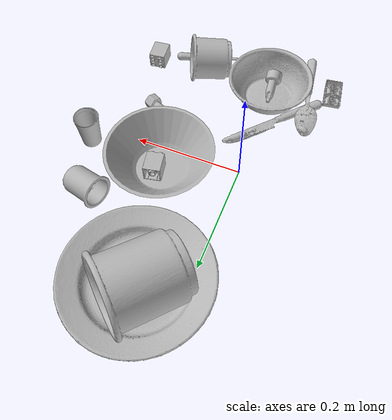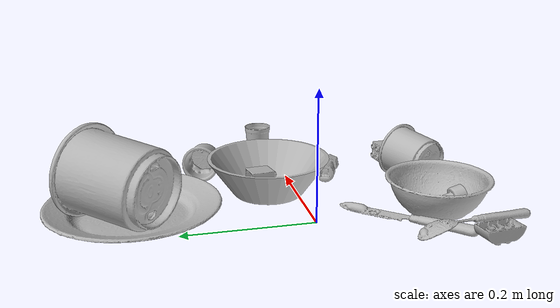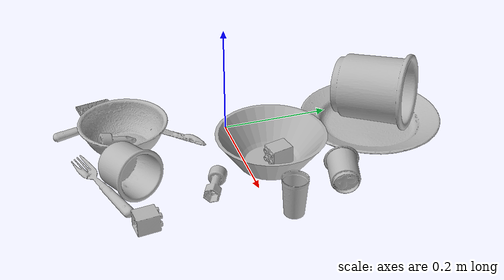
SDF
<sdf version="1.4">
  <world name="default">
    <light name="light1" type="point">
      <pose>0 0 1 0 0 0</pose>
      <diffuse>3 3 3 1</diffuse>
      <specular>3 3 3 1</specular>
    </light>
    <light name="light2" type="point">
      <pose>0 0.5 2 0 0 0</pose>
      <diffuse>1 1 1 1</diffuse>
      <specular>1 1 1 1</specular>
    </light>
    <light name="light3" type="point">
      <pose>0 0.5 2 0 0 0</pose>
      <diffuse>3 3 3 1</diffuse>
      <specular>3 3 3 1</specular>
    </light>
    <scene>
      <ambient>0.7 0.7 0.7</ambient>
    </scene>
    <model name="plate1">
      <link name="link_plate1">
        <collision name="default">
          <geometry>
            <mesh>
              <uri>model://plate/collision_meshes/collision.obj</uri>
              <scale>1.0 1.0 1.0</scale>
            </mesh>
          </geometry>
          <surface>
            <friction>
              <ode>
                <mu>0.5</mu>
                <mu2>0.5</mu2>
              </ode>
            </friction>
          <contact>
        <ode>
            <max_vel>0</max_vel>
            <min_depth>0.0001</min_depth>
            <kp>1e8</kp>
        </ode>
    </contact></surface>
        </collision>
        <visual name="default">
          <geometry>
            <mesh>
              <uri>model://plate/visual_meshes/visual.dae</uri>
              <scale>1.0 1.0 1.0</scale>
            </mesh>
          </geometry>
        </visual>
        <inertial>
          <mass>0.188415065407753</mass>
          <pose>-0.0006044681649655104 0.0002782578521873802 -0.0010561991948634386 0.0022187970116661695 -0.0032254679619122127 0.4526056514331616</pose>
          <inertia>
            <ixx>0.00088140933</ixx>
            <iyy>0.000872979</iyy>
            <izz>0.0017239053</izz>
            <ixy>0</ixy>
            <ixz>0</ixz>
            <iyz>0</iyz>
          </inertia>
        </inertial>
      </link>
      <pose>0.07951376587152481 0.25937211513519287 0.013733206316828728 1.7027689788179231e-06 -3.673825666808807e-06 -0.1690315571752682</pose>
    </model>
    <model name="cup1">
      <link name="link_cup1">
        <collision name="default">
          <geometry>
            <mesh>
              <uri>model://d_cups/collision_meshes/collision.obj</uri>
              <scale>2.0 2.0 2.0</scale>
            </mesh>
          </geometry>
          <surface>
            <friction>
              <ode>
                <mu>0.5</mu>
                <mu2>0.5</mu2>
              </ode>
            </friction>
          <contact>
        <ode>
            <max_vel>0</max_vel>
            <min_depth>0.0001</min_depth>
            <kp>1e8</kp>
        </ode>
    </contact></surface>
        </collision>
        <visual name="default">
          <geometry>
            <mesh>
              <uri>model://d_cups/visual_meshes/visual.dae</uri>
              <scale>2.0 2.0 2.0</scale>
            </mesh>
          </geometry>
        </visual>
        <inertial>
          <mass>0.39843064546585083</mass>
          <pose>0.0016136104241013527 0.0038234808016568422 -0.004533304367214441 0.24012134810188138 -0.24709791903716813 0.5942561701250738</pose>
          <inertia>
            <ixx>0.0013343208</ixx>
            <iyy>0.001330459</iyy>
            <izz>0.001207787</izz>
            <ixy>0</ixy>
            <ixz>0</ixz>
            <iyz>0</iyz>
          </inertia>
        </inertial>
      </link>
      <pose>0.059160538017749786 0.2734223008155823 0.06787903606891632 -1.3879750131818058 1.0571069419026076 -0.5593204360266343</pose>
    </model>
    <model name="silverware1">
      <link name="link_silverware1">
        <collision name="default">
          <geometry>
            <mesh>
              <uri>model://knife/collision_meshes/collision.obj</uri>
              <scale>1.0 1.0 1.0</scale>
            </mesh>
          </geometry>
          <surface>
            <friction>
              <ode>
                <mu>0.5</mu>
                <mu2>0.5</mu2>
              </ode>
            </friction>
          <contact>
        <ode>
            <max_vel>0</max_vel>
            <min_depth>0.0001</min_depth>
            <kp>1e8</kp>
        </ode>
    </contact></surface>
        </collision>
        <visual name="default">
          <geometry>
            <mesh>
              <uri>model://knife/visual_meshes/visual.dae</uri>
              <scale>1.0 1.0 1.0</scale>
            </mesh>
          </geometry>
        </visual>
        <inertial>
          <mass>0.027211036533117294</mass>
          <pose>-0.02378525771200657 0.0015275125624611974 5.062023410573602e-05 0.0730549860308878 0.01724841828598218 -0.007409817457274567</pose>
          <inertia>
            <ixx>7.723595e-07</ixx>
            <iyy>0.000104540384</iyy>
            <izz>0.00010478913</izz>
            <ixy>0</ixy>
            <ixz>0</ixz>
            <iyz>0</iyz>
          </inertia>
        </inertial>
      </link>
      <pose>-0.02458062209188938 -0.12779895961284637 0.0060372622683644295 2.976429270834836 0.025039931328255806 0.8143591625958089</pose>
    </model>
    <model name="silverware2">
      <link name="link_silverware2">
        <collision name="default">
          <geometry>
            <mesh>
              <uri>model://fork/collision_meshes/collision.obj</uri>
              <scale>1.0 1.0 1.0</scale>
            </mesh>
          </geometry>
          <surface>
            <friction>
              <ode>
                <mu>0.5</mu>
                <mu2>0.5</mu2>
              </ode>
            </friction>
          <contact>
        <ode>
            <max_vel>0</max_vel>
            <min_depth>0.0001</min_depth>
            <kp>1e8</kp>
        </ode>
    </contact></surface>
        </collision>
        <visual name="default">
          <geometry>
            <mesh>
              <uri>model://fork/visual_meshes/visual.dae</uri>
              <scale>1.0 1.0 1.0</scale>
            </mesh>
          </geometry>
        </visual>
        <inertial>
          <mass>0.01567319966852665</mass>
          <pose>-0.029570044949650764 0.00046588233090005815 0.0003218860656488687 -0.013551693849150472 -0.010977837004960822 0.014453899894816049</pose>
          <inertia>
            <ixx>5.494343e-07</ixx>
            <iyy>4.0918225e-05</iyy>
            <izz>4.1163967e-05</izz>
            <ixy>0</ixy>
            <ixz>0</ixz>
            <iyz>0</iyz>
          </inertia>
        </inertial>
      </link>
      <pose>0.12145423889160156 -0.2513276934623718 0.0057203383184969425 -0.18319430764458897 0.024723684562928554 -2.8260491131036214</pose>
    </model>
    <model name="silverware3">
      <link name="link_silverware3">
        <collision name="default">
          <geometry>
            <mesh>
              <uri>model://spoon/collision_meshes/collision.obj</uri>
              <scale>1.0 1.0 1.0</scale>
            </mesh>
          </geometry>
          <surface>
            <friction>
              <ode>
                <mu>0.5</mu>
                <mu2>0.5</mu2>
              </ode>
            </friction>
          <contact>
        <ode>
            <max_vel>0</max_vel>
            <min_depth>0.0001</min_depth>
            <kp>1e8</kp>
        </ode>
    </contact></surface>
        </collision>
        <visual name="default">
          <geometry>
            <mesh>
              <uri>model://spoon/visual_meshes/visual.dae</uri>
              <scale>1.0 1.0 1.0</scale>
            </mesh>
          </geometry>
        </visual>
        <inertial>
          <mass>0.020675545558333397</mass>
          <pose>-0.0055263228714466095 -0.001603417913429439 -0.0007271659560501575 0.03521671071703309 -0.03906584129558259 0.006150610048623938</pose>
          <inertia>
            <ixx>1.1500075e-06</ixx>
            <iyy>7.866978e-05</iyy>
            <izz>7.923691e-05</izz>
            <ixy>0</ixy>
            <ixz>0</ixz>
            <iyz>0</iyz>
          </inertia>
        </inertial>
      </link>
      <pose>-0.06625630706548691 -0.21632829308509827 0.010571634396910667 -2.9900680243066216 -0.06512050998321571 1.7536015439696153</pose>
    </model>
    <model name="cup3">
      <link name="link_cup3">
        <collision name="default">
          <geometry>
            <mesh>
              <uri>model://h_cups/collision_meshes/collision.obj</uri>
              <scale>1.0 1.0 1.0</scale>
            </mesh>
          </geometry>
          <surface>
            <friction>
              <ode>
                <mu>0.5</mu>
                <mu2>0.5</mu2>
              </ode>
            </friction>
          <contact>
        <ode>
            <max_vel>0</max_vel>
            <min_depth>0.0001</min_depth>
            <kp>1e8</kp>
        </ode>
    </contact></surface>
        </collision>
        <visual name="default">
          <geometry>
            <mesh>
              <uri>model://h_cups/visual_meshes/visual.dae</uri>
              <scale>1.0 1.0 1.0</scale>
            </mesh>
          </geometry>
        </visual>
        <inertial>
          <mass>0.08491484075784683</mass>
          <pose>-2.702520214370452e-05 0.00023018663341645151 -0.0018405397422611713 -0.02436220805872295 0.06545280106490914 0.1288526015338695</pose>
          <inertia>
            <ixx>0.000109663546</ixx>
            <iyy>0.00010835491</iyy>
            <izz>0.00011500697</izz>
            <ixy>0</ixy>
            <ixz>0</ixz>
            <iyz>0</iyz>
          </inertia>
        </inertial>
      </link>
      <pose>0.13622769713401794 -0.20774328708648682 0.04196357727050781 1.4484468960843677 -0.5170621501034167 2.054916908630513</pose>
    </model>
    <model name="cup4">
      <link name="link_cup4">
        <collision name="default">
          <geometry>
            <mesh>
              <uri>model://cup_small/collision_meshes/collision.obj</uri>
              <scale>1.0 1.0 1.0</scale>
            </mesh>
          </geometry>
          <surface>
            <friction>
              <ode>
                <mu>0.5</mu>
                <mu2>0.5</mu2>
              </ode>
            </friction>
          <contact>
        <ode>
            <max_vel>0</max_vel>
            <min_depth>0.0001</min_depth>
            <kp>1e8</kp>
        </ode>
    </contact></surface>
        </collision>
        <visual name="default">
          <geometry>
            <mesh>
              <uri>model://cup_small/visual_meshes/visual.dae</uri>
              <scale>1.0 1.0 1.0</scale>
            </mesh>
          </geometry>
        </visual>
        <inertial>
          <mass>0.024220753461122513</mass>
          <pose>0.00010482438665349036 -0.00033778438228182495 -0.010742821730673313 -0.011493274197159384 -0.01528013747447056 -0.5058088438882253</pose>
          <inertia>
            <ixx>1.4260815e-05</ixx>
            <iyy>1.433438e-05</iyy>
            <izz>6.4388e-06</izz>
            <ixy>0</ixy>
            <ixz>0</ixz>
            <iyz>0</iyz>
          </inertia>
        </inertial>
      </link>
      <pose>0.28237640857696533 0.033104728907346725 0.03472999110817909 8.685261187182543e-06 -3.388673703045373e-05 0.7259941465752453</pose>
    </model>
    <model name="cup5">
      <link name="link_cup5">
        <collision name="default">
          <geometry>
            <mesh>
              <uri>model://b_cups/collision_meshes/collision.obj</uri>
              <scale>1.0 1.0 1.0</scale>
            </mesh>
          </geometry>
          <surface>
            <friction>
              <ode>
                <mu>0.5</mu>
                <mu2>0.5</mu2>
              </ode>
            </friction>
          <contact>
        <ode>
            <max_vel>0</max_vel>
            <min_depth>0.0001</min_depth>
            <kp>1e8</kp>
        </ode>
    </contact></surface>
        </collision>
        <visual name="default">
          <geometry>
            <mesh>
              <uri>model://b_cups/visual_meshes/visual.dae</uri>
              <scale>1.0 1.0 1.0</scale>
            </mesh>
          </geometry>
        </visual>
        <inertial>
          <mass>0.049698356539011</mass>
          <pose>0.0005182003951631486 0.0018058595014736056 -0.0013381819007918239 0.1135633586286738 0.03872473724046268 -0.3456911343663658</pose>
          <inertia>
            <ixx>3.2531058e-05</ixx>
            <iyy>3.1913434e-05</iyy>
            <izz>2.7374275e-05</izz>
            <ixy>0</ixy>
            <ixz>0</ixz>
            <iyz>0</iyz>
          </inertia>
        </inertial>
      </link>
      <pose>0.23605987429618835 0.13883857429027557 0.02776259556412697 -1.4737308985183966 0.1388195253603093 1.3229562718009398</pose>
    </model>
    <model name="bowl1">
      <link name="link_bowl1">
        <collision name="default">
          <geometry>
            <mesh>
              <uri>model://bowl/collision_meshes/collision.obj</uri>
              <scale>1.0 1.0 1.0</scale>
            </mesh>
          </geometry>
          <surface>
            <friction>
              <ode>
                <mu>0.5</mu>
                <mu2>0.5</mu2>
              </ode>
            </friction>
          <contact>
        <ode>
            <max_vel>0</max_vel>
            <min_depth>0.0001</min_depth>
            <kp>1e8</kp>
        </ode>
    </contact></surface>
        </collision>
        <visual name="default">
          <geometry>
            <mesh>
              <uri>model://bowl/visual_meshes/visual.dae</uri>
              <scale>1.0 1.0 1.0</scale>
            </mesh>
          </geometry>
        </visual>
        <inertial>
          <mass>0.10713337361812592</mass>
          <pose>0.00020444899564608932 -0.001030207029543817 -0.0008042642148211598 -0.015763984617069283 0.014546905390658569 0.7140476331316008</pose>
          <inertia>
            <ixx>0.0002460938</ixx>
            <iyy>0.00024059511</iyy>
            <izz>0.00041401442</izz>
            <ixy>0</ixy>
            <ixz>0</ixz>
            <iyz>0</iyz>
          </inertia>
        </inertial>
      </link>
      <pose>0.006045015994459391 -0.1922304928302765 0.027780011296272278 -5.1794579034818517e-08 4.0244363498013395e-07 -0.8195877031902393</pose>
    </model>
    <model name="bowl2">
      <link name="link_bowl2">
        <collision name="default">
          <geometry>
            <mesh>
              <uri>model://bowl_a/collision_meshes/collision.obj</uri>
              <scale>1.0 1.0 1.0</scale>
            </mesh>
          </geometry>
          <surface>
            <friction>
              <ode>
                <mu>0.5</mu>
                <mu2>0.5</mu2>
              </ode>
            </friction>
          <contact>
        <ode>
            <max_vel>0</max_vel>
            <min_depth>0.0001</min_depth>
            <kp>1e8</kp>
        </ode>
    </contact></surface>
        </collision>
        <visual name="default">
          <geometry>
            <mesh>
              <uri>model://bowl_a/visual_meshes/visual.dae</uri>
              <scale>1.0 1.0 1.0</scale>
            </mesh>
          </geometry>
        </visual>
        <inertial>
          <mass>0.5226007103919983</mass>
          <pose>0.00027867400785908103 4.731409717351198e-05 -0.0013765293406322598 -0.0009805372975616423 -0.0010938241101444716 -0.19123543414166835</pose>
          <inertia>
            <ixx>0.0014878683</ixx>
            <iyy>0.0014970028</iyy>
            <izz>0.0026462309</izz>
            <ixy>0</ixy>
            <ixz>0</ixz>
            <iyz>0</iyz>
          </inertia>
        </inertial>
      </link>
      <pose>0.13473868370056152 0.04392175003886223 0.030383039265871048 -4.888632121355097e-07 1.6086474413439189e-06 1.6809882549292152</pose>
    </model>
    <model name="toy1">
      <link name="link_toy1">
        <collision name="default">
          <geometry>
            <mesh>
              <uri>model://f_lego_duplo/collision_meshes/collision.obj</uri>
              <scale>1.0 1.0 1.0</scale>
            </mesh>
          </geometry>
          <surface>
            <friction>
              <ode>
                <mu>0.5</mu>
                <mu2>0.5</mu2>
              </ode>
            </friction>
          <contact>
        <ode>
            <max_vel>0</max_vel>
            <min_depth>0.0001</min_depth>
            <kp>1e8</kp>
        </ode>
    </contact></surface>
        </collision>
        <visual name="default">
          <geometry>
            <mesh>
              <uri>model://f_lego_duplo/visual_meshes/visual.dae</uri>
              <scale>1.0 1.0 1.0</scale>
            </mesh>
          </geometry>
        </visual>
        <inertial>
          <mass>0.04674473777413368</mass>
          <pose>2.3694283299846575e-05 0.00013393160770647228 0.0018837876850739121 0.029838743240884653 -0.014424615896258132 -0.6756775311218791</pose>
          <inertia>
            <ixx>9.877422e-06</ixx>
            <iyy>9.965418e-06</iyy>
            <izz>8.57402e-06</izz>
            <ixy>0</ixy>
            <ixz>0</ixz>
            <iyz>0</iyz>
          </inertia>
        </inertial>
      </link>
      <pose>0.14224523305892944 0.05429458245635033 0.02129068598151207 3.127596174649742 1.5349818482423168 1.7567177711370026</pose>
    </model>
    <model name="toy2">
      <link name="link_toy2">
        <collision name="default">
          <geometry>
            <mesh>
              <uri>model://b_lego_duplo/collision_meshes/collision.obj</uri>
              <scale>1.0 1.0 1.0</scale>
            </mesh>
          </geometry>
          <surface>
            <friction>
              <ode>
                <mu>0.5</mu>
                <mu2>0.5</mu2>
              </ode>
            </friction>
          <contact>
        <ode>
            <max_vel>0</max_vel>
            <min_depth>0.0001</min_depth>
            <kp>1e8</kp>
        </ode>
    </contact></surface>
        </collision>
        <visual name="default">
          <geometry>
            <mesh>
              <uri>model://b_lego_duplo/visual_meshes/visual.dae</uri>
              <scale>1.0 1.0 1.0</scale>
            </mesh>
          </geometry>
        </visual>
        <inertial>
          <mass>0.046308279037475586</mass>
          <pose>-0.00011053026537410915 -9.152292477665469e-06 0.001929429010488093 -0.03749474318211287 -0.02635425030857695 0.451892682452606</pose>
          <inertia>
            <ixx>9.477338e-06</ixx>
            <iyy>9.541048e-06</iyy>
            <izz>8.443999e-06</izz>
            <ixy>0</ixy>
            <ixz>0</ixz>
            <iyz>0</iyz>
          </inertia>
        </inertial>
      </link>
      <pose>0.24617210030555725 -0.200624480843544 0.016180753707885742 0.042357133887821086 -1.562385655378821 -1.506849722977604</pose>
    </model>
    <model name="toy3">
      <link name="link_toy3">
        <collision name="default">
          <geometry>
            <mesh>
              <uri>model://c_toy_airplane/collision_meshes/collision.obj</uri>
              <scale>1.0 1.0 1.0</scale>
            </mesh>
          </geometry>
          <surface>
            <friction>
              <ode>
                <mu>0.5</mu>
                <mu2>0.5</mu2>
              </ode>
            </friction>
          <contact>
        <ode>
            <max_vel>0</max_vel>
            <min_depth>0.0001</min_depth>
            <kp>1e8</kp>
        </ode>
    </contact></surface>
        </collision>
        <visual name="default">
          <geometry>
            <mesh>
              <uri>model://c_toy_airplane/visual_meshes/visual.dae</uri>
              <scale>1.0 1.0 1.0</scale>
            </mesh>
          </geometry>
        </visual>
        <inertial>
          <mass>0.03609102964401245</mass>
          <pose>-0.00023024271649774164 -4.429565194641327e-07 -0.006080531980842352 -0.006192551548155338 -0.01679780015794874 0.7654806130326979</pose>
          <inertia>
            <ixx>1.6572261e-05</ixx>
            <iyy>1.6525488e-05</iyy>
            <izz>3.890839e-06</izz>
            <ixy>0</ixy>
            <ixz>0</ixz>
            <iyz>0</iyz>
          </inertia>
        </inertial>
      </link>
      <pose>0.186147078871727 -0.07308164238929749 0.014633269980549812 -1.6025289228070017 0.6180107818619544 -2.0516744659799744</pose>
    </model>
    <model name="toy4">
      <link name="link_toy4">
        <collision name="default">
          <geometry>
            <mesh>
              <uri>model://d_toy_airplane/collision_meshes/collision.obj</uri>
              <scale>1.0 1.0 1.0</scale>
            </mesh>
          </geometry>
          <surface>
            <friction>
              <ode>
                <mu>0.5</mu>
                <mu2>0.5</mu2>
              </ode>
            </friction>
          <contact>
        <ode>
            <max_vel>0</max_vel>
            <min_depth>0.0001</min_depth>
            <kp>1e8</kp>
        </ode>
    </contact></surface>
        </collision>
        <visual name="default">
          <geometry>
            <mesh>
              <uri>model://d_toy_airplane/visual_meshes/visual.dae</uri>
              <scale>1.0 1.0 1.0</scale>
            </mesh>
          </geometry>
        </visual>
        <inertial>
          <mass>0.017463792115449905</mass>
          <pose>9.410289203515276e-05 -5.80932101001963e-05 -0.011728095822036266 0.00026611357398368453 0.004679028940218743 0.5192826772494831</pose>
          <inertia>
            <ixx>5.2353053e-06</ixx>
            <iyy>5.239254e-06</iyy>
            <izz>1.5805728e-06</izz>
            <ixy>0</ixy>
            <ixz>0</ixz>
            <iyz>0</iyz>
          </inertia>
        </inertial>
      </link>
      <pose>0.005475356709212065 -0.2036847621202469 0.014215052127838135 -2.383195096691644 -1.264782800087323 0.8931563387293183</pose>
    </model>
    <model name="toy5">
      <link name="link_toy5">
        <collision name="default">
          <geometry>
            <mesh>
              <uri>model://a_lego_duplo/collision_meshes/collision.obj</uri>
              <scale>1.0 1.0 1.0</scale>
            </mesh>
          </geometry>
          <surface>
            <friction>
              <ode>
                <mu>0.5</mu>
                <mu2>0.5</mu2>
              </ode>
            </friction>
          <contact>
        <ode>
            <max_vel>0</max_vel>
            <min_depth>0.0001</min_depth>
            <kp>1e8</kp>
        </ode>
    </contact></surface>
        </collision>
        <visual name="default">
          <geometry>
            <mesh>
              <uri>model://a_lego_duplo/visual_meshes/visual.dae</uri>
              <scale>1.0 1.0 1.0</scale>
            </mesh>
          </geometry>
        </visual>
        <inertial>
          <mass>0.016317613422870636</mass>
          <pose>-0.00011337783507769927 0.00018517576972953975 0.00036926058237440884 -0.01411698761390393 -0.0001256633936569927 6.142942133676727e-05</pose>
          <inertia>
            <ixx>2.0920475e-06</ixx>
            <iyy>4.6866458e-06</iyy>
            <izz>5.8054516e-06</izz>
            <ixy>0</ixy>
            <ixz>0</ixz>
            <iyz>0</iyz>
          </inertia>
        </inertial>
      </link>
      <pose>-0.11294345557689667 -0.22765624523162842 0.012124809436500072 -3.1412889114634117 -0.015582206880480478 1.7139225566732936</pose>
    </model>
  <physics type="ode">
      <max_contacts>50</max_contacts>
      <ode>
        <solver>
          <type>quick</type>
          <iters>75</iters>
        </solver>
        <constraints>
          <contact_max_correcting_vel>0</contact_max_correcting_vel>
          <contact_surface_layer>0</contact_surface_layer>
        </constraints>
      </ode>
    </physics></world>
</sdf>
